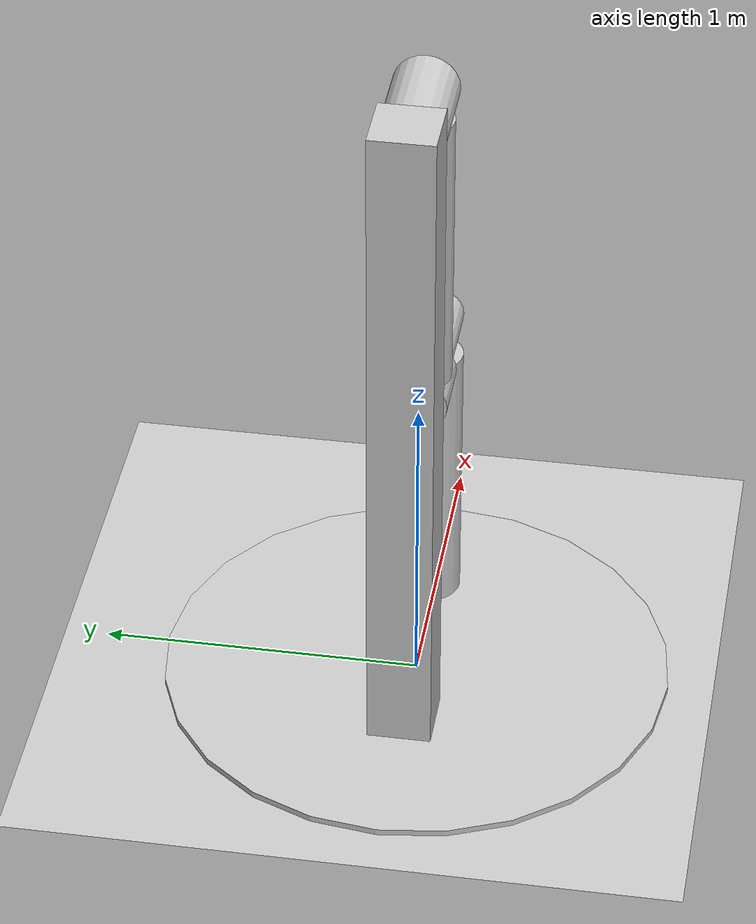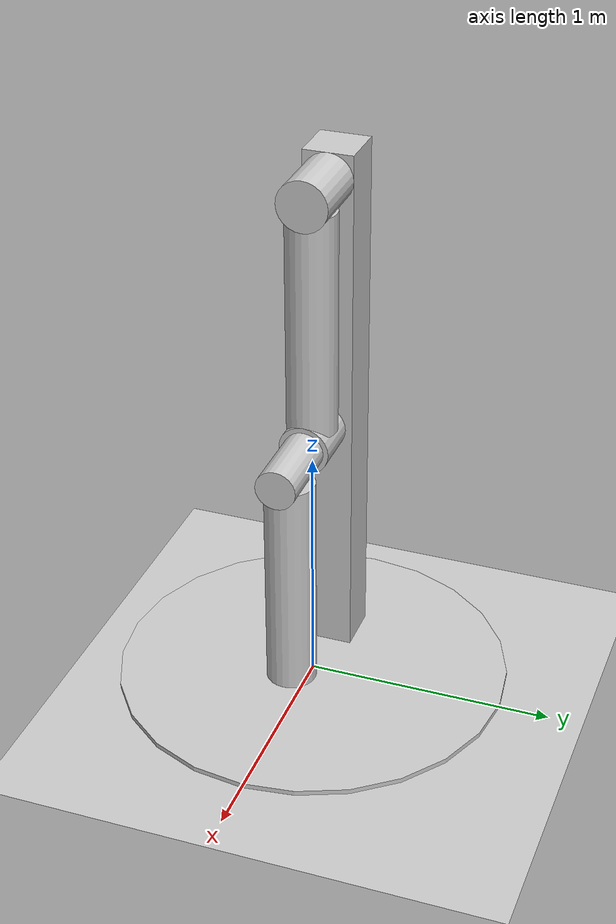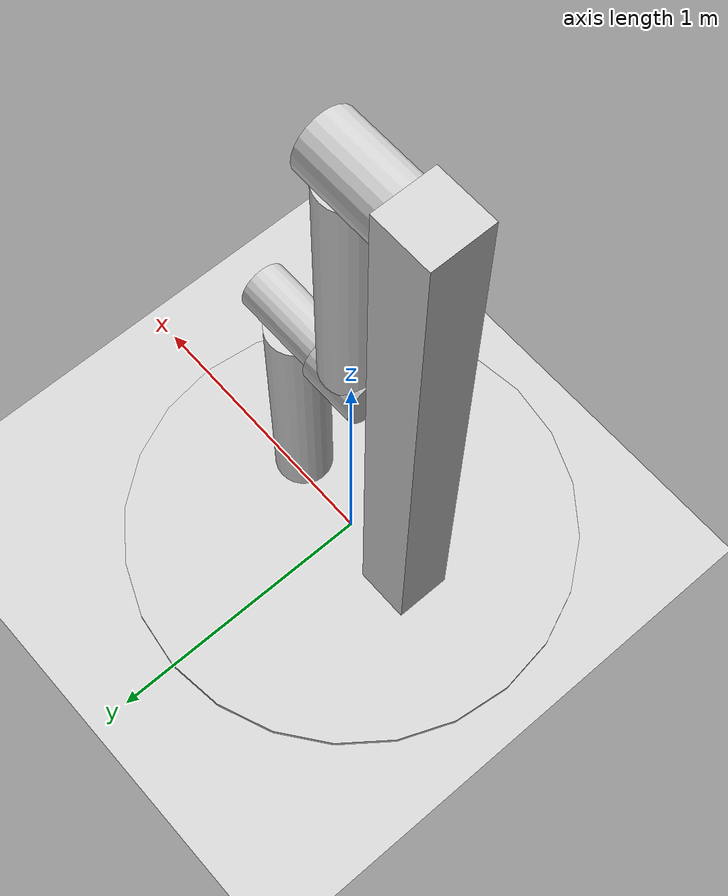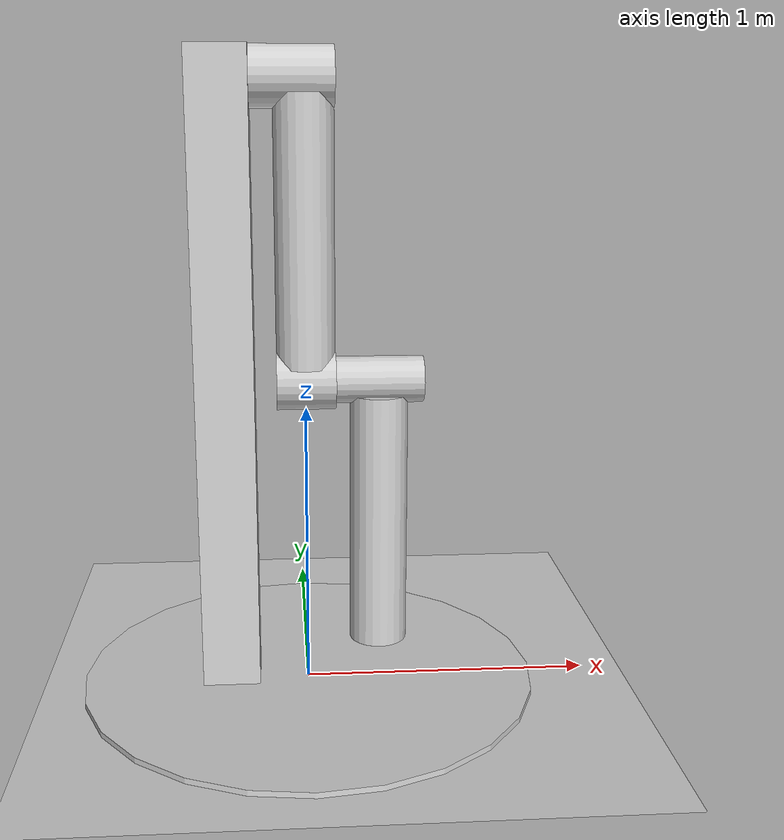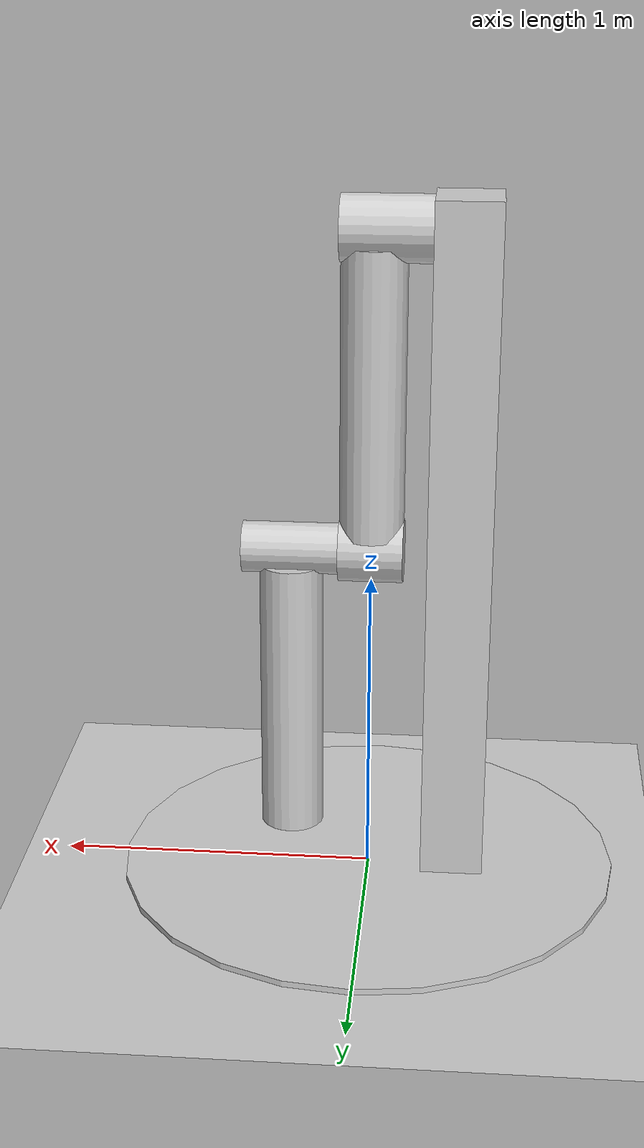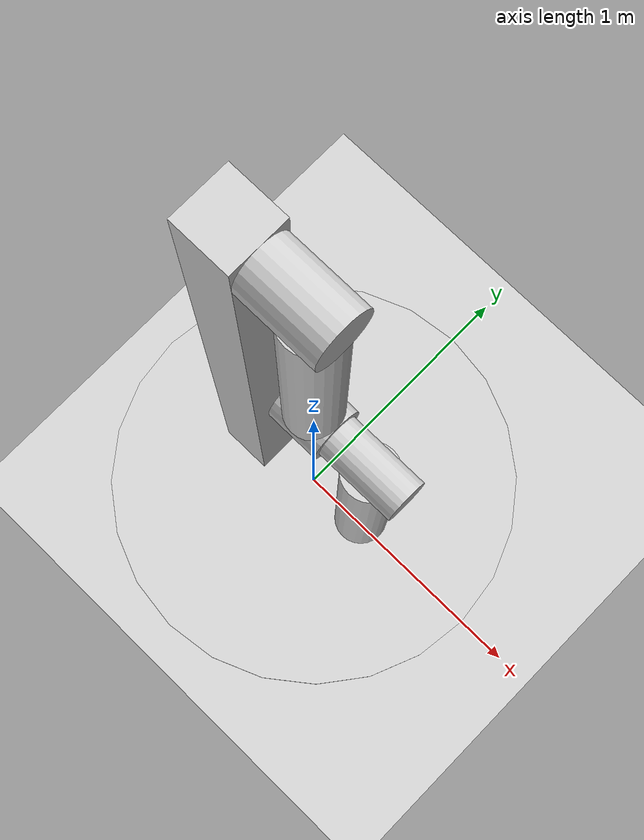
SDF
<?xml version="1.0" ?>
<!-- Modified version of pendulum_links.sdf with more reasonable inertia -->

<sdf version="1.7">
  <world name="one_armed_bandit">
    <physics name="1ms" type="ignored">
      <max_step_size>0.001</max_step_size>
      <real_time_factor>1.0</real_time_factor>
    </physics>
    <plugin
       filename="libignition-gazebo-physics-system.so"
        name="gz::sim::systems::Physics">
    </plugin>
    <plugin
        filename="libignition-gazebo-user-commands-system.so"
        name="gz::sim::systems::UserCommands">
    </plugin>
    <plugin
        filename="libignition-gazebo-scene-broadcaster-system.so"
        name="gz::sim::systems::SceneBroadcaster">
    </plugin>

    <light type="directional" name="sun">
      <cast_shadows>true</cast_shadows>
      <pose>0 0 10 0 0 0</pose>
      <diffuse>0.8 0.8 0.8 1</diffuse>
      <specular>0.2 0.2 0.2 1</specular>
      <attenuation>
        <range>1000</range>
        <constant>0.9</constant>
        <linear>0.01</linear>
        <quadratic>0.001</quadratic>
      </attenuation>
      <direction>-0.5 0.1 -0.9</direction>
    </light>

    <model name="ground_plane">
      <static>true</static>
      <link name="link">
        <collision name="collision">
        <geometry>
          <plane>
            <normal>0 0 1</normal>
          </plane>
        </geometry>
        </collision>
        <visual name="visual">
          <geometry>
            <plane>
              <normal>0 0 1</normal>
              <size>100 100</size>
            </plane>
          </geometry>
          <material>
            <ambient>0.8 0.8 0.8 1</ambient>
            <diffuse>0.8 0.8 0.8 1</diffuse>
            <specular>0.8 0.8 0.8 1</specular>
          </material>
        </visual>
      </link>
    </model>

    <model name="double_pendulum_with_base">
      <link name="base">
        <inertial>
          <inertia>
            <ixx>16</ixx>
            <ixy>0</ixy>
            <ixz>0</ixz>
            <iyy>16</iyy>
            <iyz>0</iyz>
            <izz>32</izz>
          </inertia>
          <mass>100</mass>
        </inertial>
        <visual name="vis_plate_on_ground">
          <pose>0 0 0.01 0 0 0</pose>
          <geometry>
            <cylinder>
              <radius>0.8</radius>
              <length>0.02</length>
            </cylinder>
          </geometry>
          <material>
            <ambient>0.8 0.8 0.8 1</ambient>
            <diffuse>0.8 0.8 0.8 1</diffuse>
            <specular>0.8 0.8 0.8 1</specular>
          </material>
        </visual>
        <visual name="vis_pole">
          <pose>-0.275 0 1.1 0 0 0</pose>
          <geometry>
            <box>
              <size>0.2 0.2 2.2</size>
            </box>
          </geometry>
          <material>
            <ambient>0.8 0.8 0.8 1</ambient>
            <diffuse>0.8 0.8 0.8 1</diffuse>
            <specular>0.8 0.8 0.8 1</specular>
          </material>
        </visual>
        <collision name="col_plate_on_ground">
          <pose>0 0 0.01 0 0 0</pose>
          <geometry>
            <cylinder>
              <radius>0.8</radius>
              <length>0.02</length>
            </cylinder>
          </geometry>
        </collision>
        <collision name="col_pole">
          <pose>-0.275 0 1.1 0 0 0</pose>
          <geometry>
            <box>
              <size>0.2 0.2 2.2</size>
            </box>
          </geometry>
        </collision>
      </link>
      <link name="upper_link">
        <pose>0 0 2.1 3.14159 0 0</pose>
        <self_collide>0</self_collide>
        <inertial>
          <inertia>
            <ixx>0.8583</ixx>
            <ixy>0</ixy>
            <ixz>0</ixz>
            <iyy>0.8583</iyy>
            <iyz>0</iyz>
            <izz>0.05</izz>
          </inertia>
          <mass>10</mass>
          <pose>0 0 0.5 0 0 0</pose>
        </inertial>
        <visual name="vis_upper_joint">
          <pose>-0.05 0 0 0 1.5708 0</pose>
          <geometry>
            <cylinder>
              <radius>0.1</radius>
              <length>0.3</length>
            </cylinder>
          </geometry>
          <material>
            <ambient>0.8 0.8 0.8 1</ambient>
            <diffuse>0.8 0.8 0.8 1</diffuse>
            <specular>0.8 0.8 0.8 1</specular>
          </material>
        </visual>
        <visual name="vis_lower_joint">
          <pose>0 0 1.0 0 1.5708 0</pose>
          <geometry>
            <cylinder>
              <radius>0.1</radius>
              <length>0.2</length>
            </cylinder>
          </geometry>
          <material>
            <ambient>0.8 0.8 0.8 1</ambient>
            <diffuse>0.8 0.8 0.8 1</diffuse>
            <specular>0.8 0.8 0.8 1</specular>
          </material>
        </visual>
        <visual name="vis_cylinder">
          <pose>0 0 0.5 0 0 0</pose>
          <geometry>
            <cylinder>
              <radius>0.1</radius>
              <length>0.9</length>
            </cylinder>
          </geometry>
          <material>
            <ambient>0.8 0.8 0.8 1</ambient>
            <diffuse>0.8 0.8 0.8 1</diffuse>
            <specular>0.8 0.8 0.8 1</specular>
          </material>
        </visual>
        <collision name="col_upper_joint">
          <pose>-0.05 0 0 0 1.5708 0</pose>
          <geometry>
            <cylinder>
              <radius>0.1</radius>
              <length>0.3</length>
            </cylinder>
          </geometry>
        </collision>
        <collision name="col_lower_joint">
          <pose>0 0 1.0 0 1.5708 0</pose>
          <geometry>
            <cylinder>
              <radius>0.1</radius>
              <length>0.2</length>
            </cylinder>
          </geometry>
        </collision>
        <collision name="col_cylinder">
          <pose>0 0 0.5 0 0 0</pose>
          <geometry>
            <cylinder>
              <radius>0.1</radius>
              <length>0.9</length>
            </cylinder>
          </geometry>
        </collision>
      </link>
      <link name="lower_link">
        <pose>0.25 0 1.1 3.14159 0 0</pose>
        <self_collide>0</self_collide>
        <inertial>
          <inertia>
            <ixx>0.21</ixx>
            <ixy>0</ixy>
            <ixz>0</ixz>
            <iyy>0.21</iyy>
            <iyz>0</iyz>
            <izz>0.015</izz>
          </inertia>
          <mass>3</mass>
          <pose>0 0 0.5 0 0 0</pose>
        </inertial>
        <visual name="vis_lower_joint">
          <pose>0 0 0 0 1.5708 0</pose>
          <geometry>
            <cylinder>
              <radius>0.08</radius>
              <length>0.3</length>
            </cylinder>
          </geometry>
          <material>
            <ambient>0.8 0.8 0.8 1</ambient>
            <diffuse>0.8 0.8 0.8 1</diffuse>
            <specular>0.8 0.8 0.8 1</specular>
          </material>
        </visual>
        <visual name="vis_cylinder">
          <pose>0 0 0.5 0 0 0</pose>
          <geometry>
            <cylinder>
              <radius>0.1</radius>
              <length>0.9</length>
            </cylinder>
          </geometry>
          <material>
            <ambient>0.8 0.8 0.8 1</ambient>
            <diffuse>0.8 0.8 0.8 1</diffuse>
            <specular>0.8 0.8 0.8 1</specular>
          </material>
        </visual>
        <collision name="col_lower_joint">
          <pose>0 0 0 0 1.5708 0</pose>
          <geometry>
            <cylinder>
              <radius>0.08</radius>
              <length>0.3</length>
            </cylinder>
          </geometry>
        </collision>
        <collision name="col_cylinder">
          <pose>0 0 0.5 0 0 0</pose>
          <geometry>
            <cylinder>
              <radius>0.1</radius>
              <length>0.9</length>
            </cylinder>
          </geometry>
        </collision>
      </link>
      <joint name="upper_joint" type="revolute">
        <parent>base</parent>
        <child>upper_link</child>
        <axis>
          <xyz>1.0 0 0</xyz>
          <dynamics>
            <damping>5.0</damping>
          </dynamics>
        </axis>
      </joint>
      <joint name="lower_joint" type="revolute">
        <parent>upper_link</parent>
        <child>lower_link</child>
        <axis>
          <xyz>1.0 0 0</xyz>
        </axis>
      </joint>

      <plugin
        filename="ignition-gazebo-apply-joint-force-system"
        name="gz::sim::systems::ApplyJointForce">
        <joint_name>upper_joint</joint_name>
      </plugin>
      <plugin
        filename="ignition-gazebo-joint-position-controller-system"
        name="gz::sim::systems::JointPositionController">
        <joint_name>lower_joint</joint_name>
        <use_velocity_commands>true</use_velocity_commands>
        <cmd_max>10</cmd_max>
        <topic>joint_lower_joint_cmd_pos</topic> <!-- workaround for ros_gz_bridge parameter_bridge having issue with original topic path -->
      </plugin>
      <plugin
        filename="ignition-gazebo-joint-state-publisher-system"
        name="gz::sim::systems::JointStatePublisher"></plugin>
      <plugin
        filename="ignition-gazebo-pose-publisher-system"
        name="gz::sim::systems::PosePublisher">
        <publish_link_pose>true</publish_link_pose>
        <publish_visual_pose>false</publish_visual_pose>
        <publish_collision_pose>false</publish_collision_pose>
        <publish_sensor_pose>false</publish_sensor_pose>
        <publish_nested_model_pose>true</publish_nested_model_pose>
        <publish_model_pose>true</publish_model_pose>
        <use_pose_vector_msg>true</use_pose_vector_msg>
        <update_frequency>100</update_frequency>
      </plugin>
    </model>
  </world>
</sdf>
